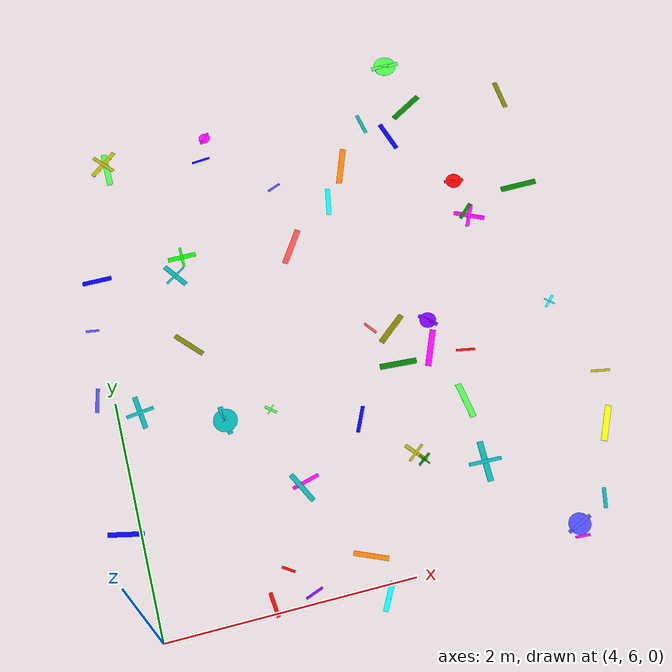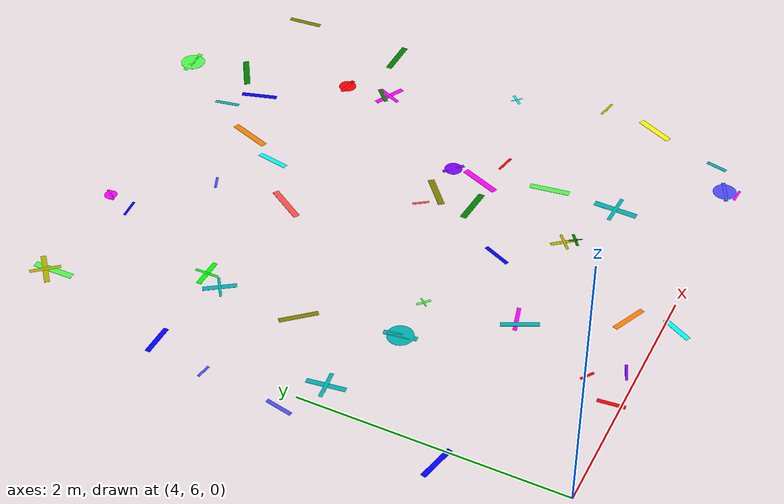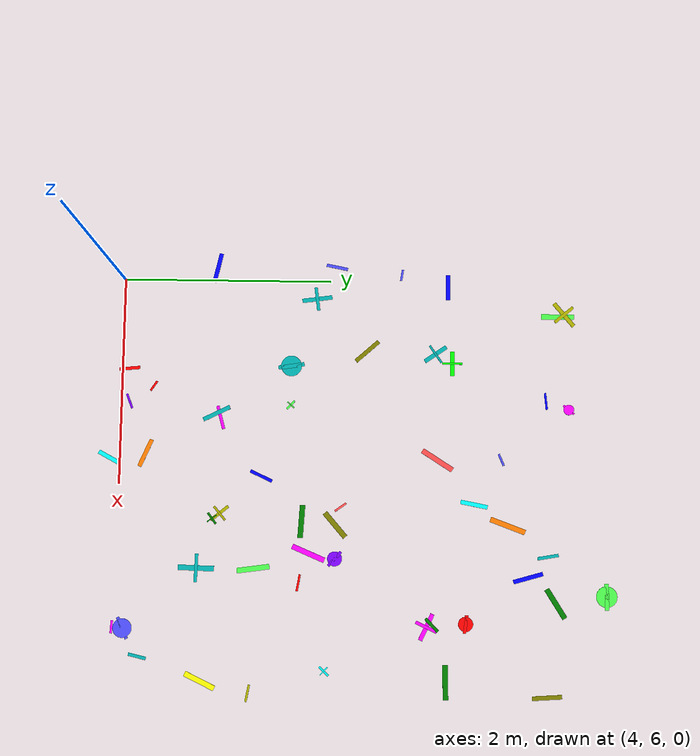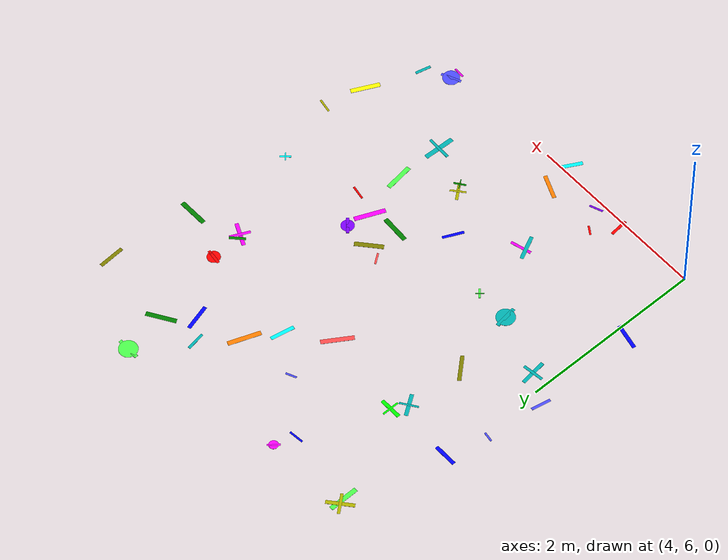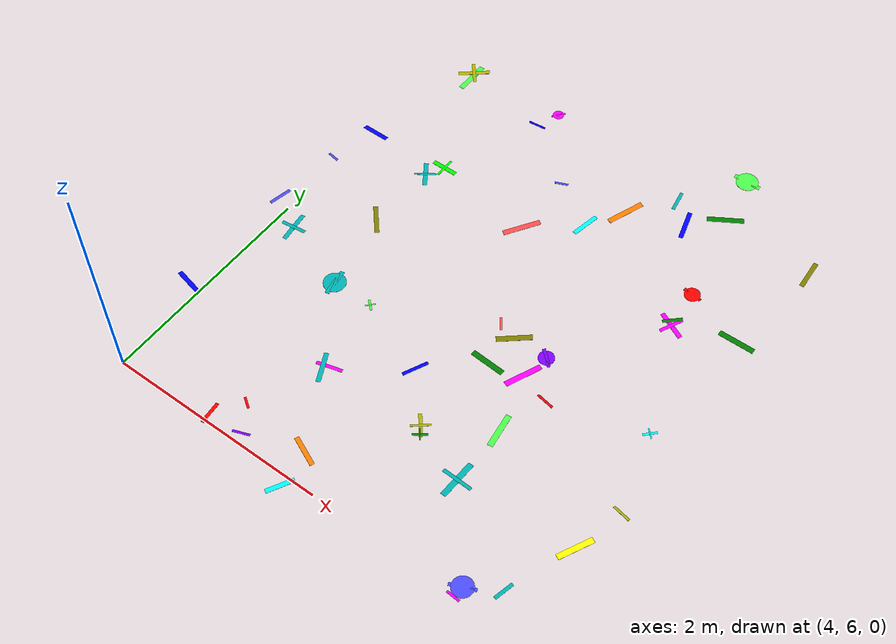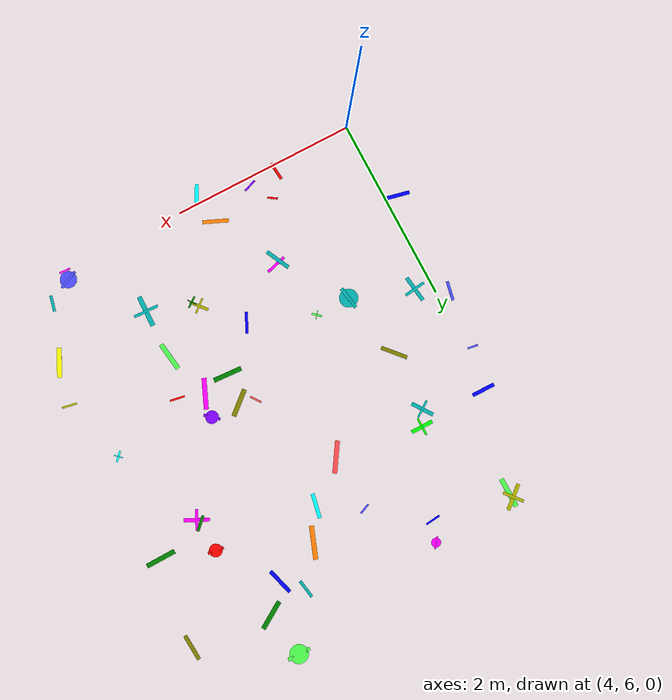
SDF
<sdf version="1.6">
 <world name="default">
  <model name="letter_X_1439">
   <static>true</static>
   <pose>3.88 6.90 0.012 0 0 6.064</pose>
   <link name="link">
    <visual name="visual">
     <geometry><box><size>0.29 0.04 0.002</size></box></geometry>
     <material>
      <ambient>0.0 0.0 1.0 1</ambient>
      <diffuse>0.0 0.0 1.0 1</diffuse>
      <specular>0.1 0.1 0.1 1</specular>
     </material>
    </visual>
   </link>
  </model>
  <model name="letter_Z_1441">
   <static>true</static>
   <pose>3.86 8.06 0.010 0 0 1.370</pose>
   <link name="link">
    <visual name="visual">
     <geometry><box><size>0.21 0.03 0.002</size></box></geometry>
     <material>
      <ambient>0.3 0.3 1.0 1</ambient>
      <diffuse>0.3 0.3 1.0 1</diffuse>
      <specular>0.1 0.1 0.1 1</specular>
     </material>
    </visual>
   </link>
  </model>
  <model name="letter_E_1442">
   <static>true</static>
   <pose>4.18 7.87 0.012 0 0 1.702</pose>
   <link name="link">
    <visual name="visual">
     <geometry><box><size>0.29 0.04 0.002</size></box></geometry>
     <material>
      <ambient>0.0 0.7 0.7 1</ambient>
      <diffuse>0.0 0.7 0.7 1</diffuse>
      <specular>0.1 0.1 0.1 1</specular>
     </material>
    </visual>
    <visual name="visual2">
     <pose>0 0 0.001 0 0 1.57</pose>
     <geometry><box><size>0.23 0.03 0.001</size></box></geometry>
     <material><ambient>0.0 0.7 0.7 1</ambient><diffuse>0.0 0.7 0.7 1</diffuse></material>
    </visual>
   </link>
  </model>
  <model name="letter_X_1443">
   <static>true</static>
   <pose>3.93 8.69 0.004 0 0 2.988</pose>
   <link name="link">
    <visual name="visual">
     <geometry><box><size>0.11 0.02 0.002</size></box></geometry>
     <material>
      <ambient>0.3 0.3 1.0 1</ambient>
      <diffuse>0.3 0.3 1.0 1</diffuse>
      <specular>0.1 0.1 0.1 1</specular>
     </material>
    </visual>
   </link>
  </model>
  <model name="letter_U_1444">
   <static>true</static>
   <pose>4.05 9.14 0.004 0 0 3.137</pose>
   <link name="link">
    <visual name="visual">
     <geometry><box><size>0.25 0.04 0.002</size></box></geometry>
     <material>
      <ambient>0.0 0.0 1.0 1</ambient>
      <diffuse>0.0 0.0 1.0 1</diffuse>
      <specular>0.1 0.1 0.1 1</specular>
     </material>
    </visual>
   </link>
  </model>
  <model name="letter_L_1446">
   <static>true</static>
   <pose>4.31 10.26 0.013 0 0 3.841</pose>
   <link name="link">
    <visual name="visual">
     <geometry><box><size>0.29 0.04 0.002</size></box></geometry>
     <material>
      <ambient>0.7 0.7 0.0 1</ambient>
      <diffuse>0.7 0.7 0.0 1</diffuse>
      <specular>0.1 0.1 0.1 1</specular>
     </material>
    </visual>
    <visual name="visual2">
     <pose>0 0 0.001 0 0 1.57</pose>
     <geometry><box><size>0.23 0.03 0.001</size></box></geometry>
     <material><ambient>0.7 0.7 0.0 1</ambient><diffuse>0.7 0.7 0.0 1</diffuse></material>
    </visual>
   </link>
  </model>
  <model name="letter_Z_1447">
   <static>true</static>
   <pose>4.33 10.20 0.010 0 0 1.580</pose>
   <link name="link">
    <visual name="visual">
     <geometry><box><size>0.32 0.05 0.002</size></box></geometry>
     <material>
      <ambient>0.3 1.0 0.3 1</ambient>
      <diffuse>0.3 1.0 0.3 1</diffuse>
      <specular>0.1 0.1 0.1 1</specular>
     </material>
    </visual>
   </link>
  </model>
  <model name="letter_K_1510">
   <static>true</static>
   <pose>5.05 6.31 0.007 0 0 5.694</pose>
   <link name="link">
    <visual name="visual">
     <geometry><box><size>0.11 0.02 0.002</size></box></geometry>
     <material>
      <ambient>1.0 0.0 0.0 1</ambient>
      <diffuse>1.0 0.0 0.0 1</diffuse>
      <specular>0.1 0.1 0.1 1</specular>
     </material>
    </visual>
   </link>
  </model>
  <model name="letter_Z_1511">
   <static>true</static>
   <pose>5.20 6.08 0.006 0 0 3.500</pose>
   <link name="link">
    <visual name="visual">
     <geometry><box><size>0.15 0.02 0.002</size></box></geometry>
     <material>
      <ambient>0.5 0.0 1.0 1</ambient>
      <diffuse>0.5 0.0 1.0 1</diffuse>
      <specular>0.1 0.1 0.1 1</specular>
     </material>
    </visual>
   </link>
  </model>
  <model name="letter_S_1512">
   <static>true</static>
   <pose>4.88 6.07 0.004 0 0 1.667</pose>
   <link name="link">
    <visual name="visual">
     <geometry><box><size>0.20 0.03 0.002</size></box></geometry>
     <material>
      <ambient>1.0 0.0 0.0 1</ambient>
      <diffuse>1.0 0.0 0.0 1</diffuse>
      <specular>0.1 0.1 0.1 1</specular>
     </material>
    </visual>
   </link>
  </model>
  <model name="letter_S_1513">
   <static>true</static>
   <pose>5.31 6.92 0.010 0 0 5.171</pose>
   <link name="link">
    <visual name="visual">
     <geometry><box><size>0.28 0.04 0.002</size></box></geometry>
     <material>
      <ambient>0.0 0.7 0.7 1</ambient>
      <diffuse>0.0 0.7 0.7 1</diffuse>
      <specular>0.1 0.1 0.1 1</specular>
     </material>
    </visual>
   </link>
  </model>
  <model name="letter_Y_1514">
   <static>true</static>
   <pose>5.35 6.96 0.009 0 0 3.407</pose>
   <link name="link">
    <visual name="visual">
     <geometry><box><size>0.23 0.03 0.002</size></box></geometry>
     <material>
      <ambient>1.0 0.0 1.0 1</ambient>
      <diffuse>1.0 0.0 1.0 1</diffuse>
      <specular>0.1 0.1 0.1 1</specular>
     </material>
    </visual>
   </link>
  </model>
  <model name="letter_O_1515">
   <static>true</static>
   <pose>4.84 7.63 0.006 0 0 1.717</pose>
   <link name="link">
    <visual name="visual">
     <geometry><box><size>0.25 0.04 0.002</size></box></geometry>
     <material>
      <ambient>0.0 0.7 0.7 1</ambient>
      <diffuse>0.0 0.7 0.7 1</diffuse>
      <specular>0.1 0.1 0.1 1</specular>
     </material>
    </visual>
    <visual name="visual2">
     <geometry><cylinder><radius>0.10</radius><length>0.002</length></cylinder></geometry>
     <material><ambient>0.0 0.7 0.7 1</ambient><diffuse>0.0 0.7 0.7 1</diffuse></material>
    </visual>
   </link>
  </model>
  <model name="letter_P_1516">
   <static>true</static>
   <pose>4.69 8.36 0.008 0 0 5.438</pose>
   <link name="link">
    <visual name="visual">
     <geometry><box><size>0.29 0.04 0.002</size></box></geometry>
     <material>
      <ambient>0.5 0.5 0.0 1</ambient>
      <diffuse>0.5 0.5 0.0 1</diffuse>
      <specular>0.1 0.1 0.1 1</specular>
     </material>
    </visual>
   </link>
  </model>
  <model name="letter_L_1517">
   <static>true</static>
   <pose>5.22 7.63 0.003 0 0 2.415</pose>
   <link name="link">
    <visual name="visual">
     <geometry><box><size>0.11 0.02 0.002</size></box></geometry>
     <material>
      <ambient>0.3 1.0 0.3 1</ambient>
      <diffuse>0.3 1.0 0.3 1</diffuse>
      <specular>0.1 0.1 0.1 1</specular>
     </material>
    </visual>
    <visual name="visual2">
     <pose>0 0 0.001 0 0 1.57</pose>
     <geometry><box><size>0.09 0.01 0.001</size></box></geometry>
     <material><ambient>0.3 1.0 0.3 1</ambient><diffuse>0.3 1.0 0.3 1</diffuse></material>
    </visual>
   </link>
  </model>
  <model name="letter_I_1518">
   <static>true</static>
   <pose>4.71 9.02 0.007 0 0 2.176</pose>
   <link name="link">
    <visual name="visual">
     <geometry><box><size>0.25 0.04 0.002</size></box></geometry>
     <material>
      <ambient>0.0 0.7 0.7 1</ambient>
      <diffuse>0.0 0.7 0.7 1</diffuse>
      <specular>0.1 0.1 0.1 1</specular>
     </material>
    </visual>
    <visual name="visual2">
     <pose>0 0 0.001 0 0 1.57</pose>
     <geometry><box><size>0.20 0.02 0.001</size></box></geometry>
     <material><ambient>0.0 0.7 0.7 1</ambient><diffuse>0.0 0.7 0.7 1</diffuse></material>
    </visual>
   </link>
  </model>
  <model name="letter_A_1519">
   <static>true</static>
   <pose>4.80 9.18 0.004 0 0 0.002</pose>
   <link name="link">
    <visual name="visual">
     <geometry><box><size>0.24 0.04 0.002</size></box></geometry>
     <material>
      <ambient>0.0 1.0 0.0 1</ambient>
      <diffuse>0.0 1.0 0.0 1</diffuse>
      <specular>0.1 0.1 0.1 1</specular>
     </material>
    </visual>
    <visual name="visual2">
     <pose>0 0 0.001 0 0 1.57</pose>
     <geometry><box><size>0.19 0.02 0.001</size></box></geometry>
     <material><ambient>0.0 1.0 0.0 1</ambient><diffuse>0.0 1.0 0.0 1</diffuse></material>
    </visual>
   </link>
  </model>
  <model name="letter_J_1520">
   <static>true</static>
   <pose>5.16 10.08 0.012 0 0 3.244</pose>
   <link name="link">
    <visual name="visual">
     <geometry><box><size>0.16 0.02 0.002</size></box></geometry>
     <material>
      <ambient>0.0 0.0 1.0 1</ambient>
      <diffuse>0.0 0.0 1.0 1</diffuse>
      <specular>0.1 0.1 0.1 1</specular>
     </material>
    </visual>
   </link>
  </model>
  <model name="letter_C_1521">
   <static>true</static>
   <pose>5.24 10.30 0.007 0 0 4.015</pose>
   <link name="link">
    <visual name="visual">
     <geometry><box><size>0.13 0.02 0.002</size></box></geometry>
     <material>
      <ambient>1.0 0.0 1.0 1</ambient>
      <diffuse>1.0 0.0 1.0 1</diffuse>
      <specular>0.1 0.1 0.1 1</specular>
     </material>
    </visual>
    <visual name="visual2">
     <geometry><cylinder><radius>0.05</radius><length>0.002</length></cylinder></geometry>
     <material><ambient>1.0 0.0 1.0 1</ambient><diffuse>1.0 0.0 1.0 1</diffuse></material>
    </visual>
   </link>
  </model>
  <model name="letter_Y_1585">
   <static>true</static>
   <pose>5.70 6.25 0.008 0 0 2.731</pose>
   <link name="link">
    <visual name="visual">
     <geometry><box><size>0.28 0.04 0.002</size></box></geometry>
     <material>
      <ambient>1.0 0.5 0.0 1</ambient>
      <diffuse>1.0 0.5 0.0 1</diffuse>
      <specular>0.1 0.1 0.1 1</specular>
     </material>
    </visual>
   </link>
  </model>
  <model name="letter_M_1587">
   <static>true</static>
   <pose>5.75 5.91 0.009 0 0 4.214</pose>
   <link name="link">
    <visual name="visual">
     <geometry><box><size>0.24 0.04 0.002</size></box></geometry>
     <material>
      <ambient>0.0 1.0 1.0 1</ambient>
      <diffuse>0.0 1.0 1.0 1</diffuse>
      <specular>0.1 0.1 0.1 1</specular>
     </material>
    </visual>
   </link>
  </model>
  <model name="letter_I_1588">
   <static>true</static>
   <pose>6.27 6.97 0.005 0 0 5.404</pose>
   <link name="link">
    <visual name="visual">
     <geometry><box><size>0.21 0.03 0.002</size></box></geometry>
     <material>
      <ambient>0.7 0.7 0.0 1</ambient>
      <diffuse>0.7 0.7 0.0 1</diffuse>
      <specular>0.1 0.1 0.1 1</specular>
     </material>
    </visual>
    <visual name="visual2">
     <pose>0 0 0.001 0 0 1.57</pose>
     <geometry><box><size>0.17 0.02 0.001</size></box></geometry>
     <material><ambient>0.7 0.7 0.0 1</ambient><diffuse>0.7 0.7 0.0 1</diffuse></material>
    </visual>
   </link>
  </model>
  <model name="letter_D_1589">
   <static>true</static>
   <pose>5.91 7.36 0.007 0 0 1.134</pose>
   <link name="link">
    <visual name="visual">
     <geometry><box><size>0.23 0.03 0.002</size></box></geometry>
     <material>
      <ambient>0.0 0.0 1.0 1</ambient>
      <diffuse>0.0 0.0 1.0 1</diffuse>
      <specular>0.1 0.1 0.1 1</specular>
     </material>
    </visual>
   </link>
  </model>
  <model name="letter_A_1590">
   <static>true</static>
   <pose>6.32 6.90 0.011 0 0 0.634</pose>
   <link name="link">
    <visual name="visual">
     <geometry><box><size>0.13 0.02 0.002</size></box></geometry>
     <material>
      <ambient>0.0 0.5 0.0 1</ambient>
      <diffuse>0.0 0.5 0.0 1</diffuse>
      <specular>0.1 0.1 0.1 1</specular>
     </material>
    </visual>
    <visual name="visual2">
     <pose>0 0 0.001 0 0 1.57</pose>
     <geometry><box><size>0.11 0.01 0.001</size></box></geometry>
     <material><ambient>0.0 0.5 0.0 1</ambient><diffuse>0.0 0.5 0.0 1</diffuse></material>
    </visual>
   </link>
  </model>
  <model name="letter_Z_1591">
   <static>true</static>
   <pose>6.37 8.07 0.010 0 0 3.850</pose>
   <link name="link">
    <visual name="visual">
     <geometry><box><size>0.30 0.05 0.002</size></box></geometry>
     <material>
      <ambient>0.5 0.5 0.0 1</ambient>
      <diffuse>0.5 0.5 0.0 1</diffuse>
      <specular>0.1 0.1 0.1 1</specular>
     </material>
    </visual>
   </link>
  </model>
  <model name="letter_V_1592">
   <static>true</static>
   <pose>6.20 8.12 0.012 0 0 2.192</pose>
   <link name="link">
    <visual name="visual">
     <geometry><box><size>0.13 0.02 0.002</size></box></geometry>
     <material>
      <ambient>1.0 0.3 0.3 1</ambient>
      <diffuse>1.0 0.3 0.3 1</diffuse>
      <specular>0.1 0.1 0.1 1</specular>
     </material>
    </visual>
   </link>
  </model>
  <model name="letter_U_1593">
   <static>true</static>
   <pose>6.34 7.75 0.011 0 0 3.080</pose>
   <link name="link">
    <visual name="visual">
     <geometry><box><size>0.31 0.05 0.002</size></box></geometry>
     <material>
      <ambient>0.0 0.5 0.0 1</ambient>
      <diffuse>0.0 0.5 0.0 1</diffuse>
      <specular>0.1 0.1 0.1 1</specular>
     </material>
    </visual>
   </link>
  </model>
  <model name="letter_S_1594">
   <static>true</static>
   <pose>5.74 9.04 0.005 0 0 0.998</pose>
   <link name="link">
    <visual name="visual">
     <geometry><box><size>0.34 0.05 0.002</size></box></geometry>
     <material>
      <ambient>1.0 0.3 0.3 1</ambient>
      <diffuse>1.0 0.3 0.3 1</diffuse>
      <specular>0.1 0.1 0.1 1</specular>
     </material>
    </visual>
   </link>
  </model>
  <model name="letter_P_1595">
   <static>true</static>
   <pose>6.16 9.39 0.005 0 0 1.378</pose>
   <link name="link">
    <visual name="visual">
     <geometry><box><size>0.26 0.04 0.002</size></box></geometry>
     <material>
      <ambient>0.0 1.0 1.0 1</ambient>
      <diffuse>0.0 1.0 1.0 1</diffuse>
      <specular>0.1 0.1 0.1 1</specular>
     </material>
    </visual>
   </link>
  </model>
  <model name="letter_D_1596">
   <static>true</static>
   <pose>5.73 9.65 0.004 0 0 3.549</pose>
   <link name="link">
    <visual name="visual">
     <geometry><box><size>0.12 0.02 0.002</size></box></geometry>
     <material>
      <ambient>0.3 0.3 1.0 1</ambient>
      <diffuse>0.3 0.3 1.0 1</diffuse>
      <specular>0.1 0.1 0.1 1</specular>
     </material>
    </visual>
   </link>
  </model>
  <model name="letter_D_1597">
   <static>true</static>
   <pose>6.36 9.71 0.006 0 0 4.356</pose>
   <link name="link">
    <visual name="visual">
     <geometry><box><size>0.35 0.05 0.002</size></box></geometry>
     <material>
      <ambient>1.0 0.5 0.0 1</ambient>
      <diffuse>1.0 0.5 0.0 1</diffuse>
      <specular>0.1 0.1 0.1 1</specular>
     </material>
    </visual>
   </link>
  </model>
  <model name="letter_W_1662">
   <static>true</static>
   <pose>7.35 5.98 0.009 0 0 3.072</pose>
   <link name="link">
    <visual name="visual">
     <geometry><box><size>0.12 0.02 0.002</size></box></geometry>
     <material>
      <ambient>1.0 0.0 1.0 1</ambient>
      <diffuse>1.0 0.0 1.0 1</diffuse>
      <specular>0.1 0.1 0.1 1</specular>
     </material>
    </visual>
   </link>
  </model>
  <model name="letter_Q_1663">
   <static>true</static>
   <pose>7.36 6.08 0.003 0 0 3.556</pose>
   <link name="link">
    <visual name="visual">
     <geometry><box><size>0.22 0.03 0.002</size></box></geometry>
     <material>
      <ambient>0.3 0.3 1.0 1</ambient>
      <diffuse>0.3 0.3 1.0 1</diffuse>
      <specular>0.1 0.1 0.1 1</specular>
     </material>
    </visual>
    <visual name="visual2">
     <geometry><cylinder><radius>0.09</radius><length>0.002</length></cylinder></geometry>
     <material><ambient>0.3 0.3 1.0 1</ambient><diffuse>0.3 0.3 1.0 1</diffuse></material>
    </visual>
   </link>
  </model>
  <model name="letter_A_1664">
   <static>true</static>
   <pose>6.79 6.76 0.003 0 0 4.681</pose>
   <link name="link">
    <visual name="visual">
     <geometry><box><size>0.34 0.05 0.002</size></box></geometry>
     <material>
      <ambient>0.0 0.7 0.7 1</ambient>
      <diffuse>0.0 0.7 0.7 1</diffuse>
      <specular>0.1 0.1 0.1 1</specular>
     </material>
    </visual>
    <visual name="visual2">
     <pose>0 0 0.001 0 0 1.57</pose>
     <geometry><box><size>0.27 0.03 0.001</size></box></geometry>
     <material><ambient>0.0 0.7 0.7 1</ambient><diffuse>0.0 0.7 0.7 1</diffuse></material>
    </visual>
   </link>
  </model>
  <model name="letter_D_1665">
   <static>true</static>
   <pose>6.79 7.30 0.004 0 0 1.707</pose>
   <link name="link">
    <visual name="visual">
     <geometry><box><size>0.31 0.05 0.002</size></box></geometry>
     <material>
      <ambient>0.3 1.0 0.3 1</ambient>
      <diffuse>0.3 1.0 0.3 1</diffuse>
      <specular>0.1 0.1 0.1 1</specular>
     </material>
    </visual>
   </link>
  </model>
  <model name="letter_X_1666">
   <static>true</static>
   <pose>6.92 7.73 0.010 0 0 2.965</pose>
   <link name="link">
    <visual name="visual">
     <geometry><box><size>0.16 0.02 0.002</size></box></geometry>
     <material>
      <ambient>1.0 0.0 0.0 1</ambient>
      <diffuse>1.0 0.0 0.0 1</diffuse>
      <specular>0.1 0.1 0.1 1</specular>
     </material>
    </visual>
   </link>
  </model>
  <model name="letter_C_1667">
   <static>true</static>
   <pose>6.69 8.07 0.008 0 0 5.561</pose>
   <link name="link">
    <visual name="visual">
     <geometry><box><size>0.18 0.03 0.002</size></box></geometry>
     <material>
      <ambient>0.5 0.0 1.0 1</ambient>
      <diffuse>0.5 0.0 1.0 1</diffuse>
      <specular>0.1 0.1 0.1 1</specular>
     </material>
    </visual>
    <visual name="visual2">
     <geometry><cylinder><radius>0.07</radius><length>0.002</length></cylinder></geometry>
     <material><ambient>0.5 0.0 1.0 1</ambient><diffuse>0.5 0.0 1.0 1</diffuse></material>
    </visual>
   </link>
  </model>
  <model name="letter_Z_1668">
   <static>true</static>
   <pose>6.64 7.82 0.012 0 0 1.168</pose>
   <link name="link">
    <visual name="visual">
     <geometry><box><size>0.33 0.05 0.002</size></box></geometry>
     <material>
      <ambient>1.0 0.0 1.0 1</ambient>
      <diffuse>1.0 0.0 1.0 1</diffuse>
      <specular>0.1 0.1 0.1 1</specular>
     </material>
    </visual>
   </link>
  </model>
  <model name="letter_J_1669">
   <static>true</static>
   <pose>7.30 8.99 0.012 0 0 3.909</pose>
   <link name="link">
    <visual name="visual">
     <geometry><box><size>0.17 0.03 0.002</size></box></geometry>
     <material>
      <ambient>0.0 0.5 0.0 1</ambient>
      <diffuse>0.0 0.5 0.0 1</diffuse>
      <specular>0.1 0.1 0.1 1</specular>
     </material>
    </visual>
   </link>
  </model>
  <model name="letter_F_1670">
   <static>true</static>
   <pose>7.32 8.94 0.010 0 0 2.700</pose>
   <link name="link">
    <visual name="visual">
     <geometry><box><size>0.27 0.04 0.002</size></box></geometry>
     <material>
      <ambient>1.0 0.0 1.0 1</ambient>
      <diffuse>1.0 0.0 1.0 1</diffuse>
      <specular>0.1 0.1 0.1 1</specular>
     </material>
    </visual>
    <visual name="visual2">
     <pose>0 0 0.001 0 0 1.57</pose>
     <geometry><box><size>0.22 0.03 0.001</size></box></geometry>
     <material><ambient>1.0 0.0 1.0 1</ambient><diffuse>1.0 0.0 1.0 1</diffuse></material>
    </visual>
   </link>
  </model>
  <model name="letter_Q_1671">
   <static>true</static>
   <pose>7.29 9.31 0.008 0 0 6.160</pose>
   <link name="link">
    <visual name="visual">
     <geometry><box><size>0.17 0.03 0.002</size></box></geometry>
     <material>
      <ambient>1.0 0.0 0.0 1</ambient>
      <diffuse>1.0 0.0 0.0 1</diffuse>
      <specular>0.1 0.1 0.1 1</specular>
     </material>
    </visual>
    <visual name="visual2">
     <geometry><cylinder><radius>0.07</radius><length>0.002</length></cylinder></geometry>
     <material><ambient>1.0 0.0 0.0 1</ambient><diffuse>1.0 0.0 0.0 1</diffuse></material>
    </visual>
   </link>
  </model>
  <model name="letter_V_1672">
   <static>true</static>
   <pose>6.85 9.90 0.010 0 0 1.849</pose>
   <link name="link">
    <visual name="visual">
     <geometry><box><size>0.29 0.04 0.002</size></box></geometry>
     <material>
      <ambient>0.0 0.0 1.0 1</ambient>
      <diffuse>0.0 0.0 1.0 1</diffuse>
      <specular>0.1 0.1 0.1 1</specular>
     </material>
    </visual>
   </link>
  </model>
  <model name="letter_M_1673">
   <static>true</static>
   <pose>7.09 10.16 0.003 0 0 3.697</pose>
   <link name="link">
    <visual name="visual">
     <geometry><box><size>0.32 0.05 0.002</size></box></geometry>
     <material>
      <ambient>0.0 0.5 0.0 1</ambient>
      <diffuse>0.0 0.5 0.0 1</diffuse>
      <specular>0.1 0.1 0.1 1</specular>
     </material>
    </visual>
   </link>
  </model>
  <model name="letter_X_1674">
   <static>true</static>
   <pose>6.65 10.09 0.006 0 0 1.743</pose>
   <link name="link">
    <visual name="visual">
     <geometry><box><size>0.20 0.03 0.002</size></box></geometry>
     <material>
      <ambient>0.0 0.7 0.7 1</ambient>
      <diffuse>0.0 0.7 0.7 1</diffuse>
      <specular>0.1 0.1 0.1 1</specular>
     </material>
    </visual>
   </link>
  </model>
  <model name="letter_C_1676">
   <static>true</static>
   <pose>7.02 10.64 0.007 0 0 0.002</pose>
   <link name="link">
    <visual name="visual">
     <geometry><box><size>0.25 0.04 0.002</size></box></geometry>
     <material>
      <ambient>0.3 1.0 0.3 1</ambient>
      <diffuse>0.3 1.0 0.3 1</diffuse>
      <specular>0.1 0.1 0.1 1</specular>
     </material>
    </visual>
    <visual name="visual2">
     <geometry><cylinder><radius>0.10</radius><length>0.002</length></cylinder></geometry>
     <material><ambient>0.3 1.0 0.3 1</ambient><diffuse>0.3 1.0 0.3 1</diffuse></material>
    </visual>
   </link>
  </model>
  <model name="letter_Y_1742">
   <static>true</static>
   <pose>7.62 6.23 0.010 0 0 4.481</pose>
   <link name="link">
    <visual name="visual">
     <geometry><box><size>0.17 0.03 0.002</size></box></geometry>
     <material>
      <ambient>0.0 0.7 0.7 1</ambient>
      <diffuse>0.0 0.7 0.7 1</diffuse>
      <specular>0.1 0.1 0.1 1</specular>
     </material>
    </visual>
   </link>
  </model>
  <model name="letter_P_1746">
   <static>true</static>
   <pose>7.95 7.27 0.003 0 0 2.960</pose>
   <link name="link">
    <visual name="visual">
     <geometry><box><size>0.16 0.02 0.002</size></box></geometry>
     <material>
      <ambient>0.7 0.7 0.0 1</ambient>
      <diffuse>0.7 0.7 0.0 1</diffuse>
      <specular>0.1 0.1 0.1 1</specular>
     </material>
    </visual>
   </link>
  </model>
  <model name="letter_P_1747">
   <static>true</static>
   <pose>7.84 6.82 0.012 0 0 1.118</pose>
   <link name="link">
    <visual name="visual">
     <geometry><box><size>0.31 0.05 0.002</size></box></geometry>
     <material>
      <ambient>1.0 1.0 0.0 1</ambient>
      <diffuse>1.0 1.0 0.0 1</diffuse>
      <specular>0.1 0.1 0.1 1</specular>
     </material>
    </visual>
   </link>
  </model>
  <model name="letter_T_1748">
   <static>true</static>
   <pose>7.74 7.98 0.004 0 0 0.806</pose>
   <link name="link">
    <visual name="visual">
     <geometry><box><size>0.12 0.02 0.002</size></box></geometry>
     <material>
      <ambient>0.0 1.0 1.0 1</ambient>
      <diffuse>0.0 1.0 1.0 1</diffuse>
      <specular>0.1 0.1 0.1 1</specular>
     </material>
    </visual>
    <visual name="visual2">
     <pose>0 0 0.001 0 0 1.57</pose>
     <geometry><box><size>0.10 0.01 0.001</size></box></geometry>
     <material><ambient>0.0 1.0 1.0 1</ambient><diffuse>0.0 1.0 1.0 1</diffuse></material>
    </visual>
   </link>
  </model>
  <model name="letter_P_1751">
   <static>true</static>
   <pose>7.83 9.12 0.009 0 0 0.013</pose>
   <link name="link">
    <visual name="visual">
     <geometry><box><size>0.32 0.05 0.002</size></box></geometry>
     <material>
      <ambient>0.0 0.5 0.0 1</ambient>
      <diffuse>0.0 0.5 0.0 1</diffuse>
      <specular>0.1 0.1 0.1 1</specular>
     </material>
    </visual>
   </link>
  </model>
  <model name="letter_M_1753">
   <static>true</static>
   <pose>7.96 10.07 0.008 0 0 4.778</pose>
   <link name="link">
    <visual name="visual">
     <geometry><box><size>0.28 0.04 0.002</size></box></geometry>
     <material>
      <ambient>0.5 0.5 0.0 1</ambient>
      <diffuse>0.5 0.5 0.0 1</diffuse>
      <specular>0.1 0.1 0.1 1</specular>
     </material>
    </visual>
   </link>
  </model>
 </world>
</sdf>
